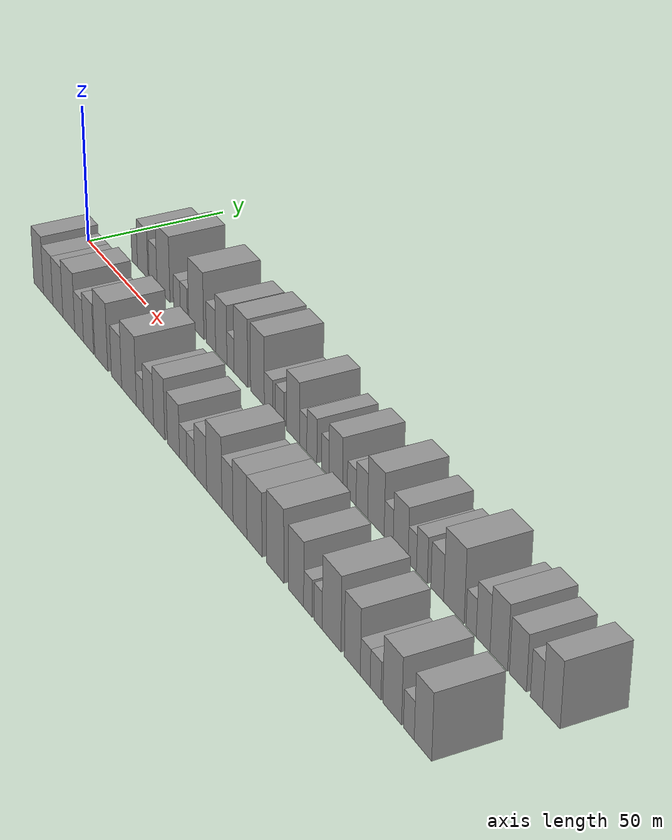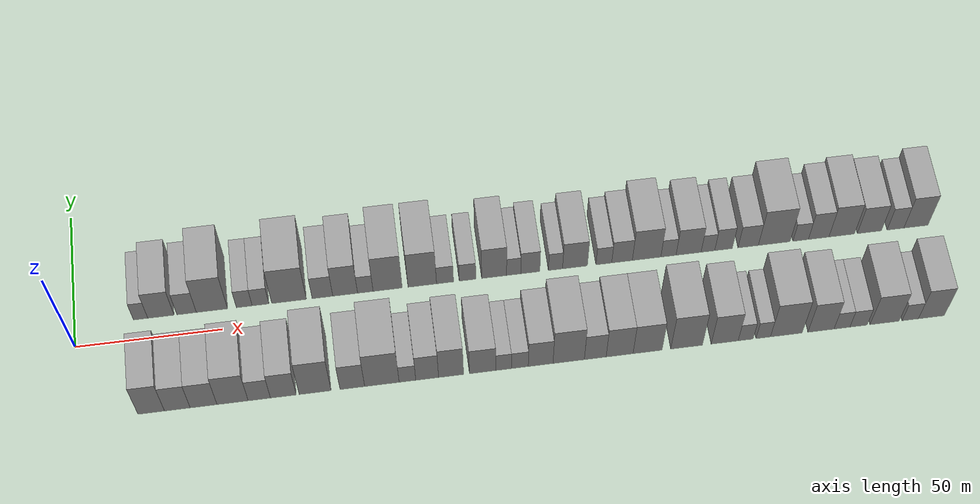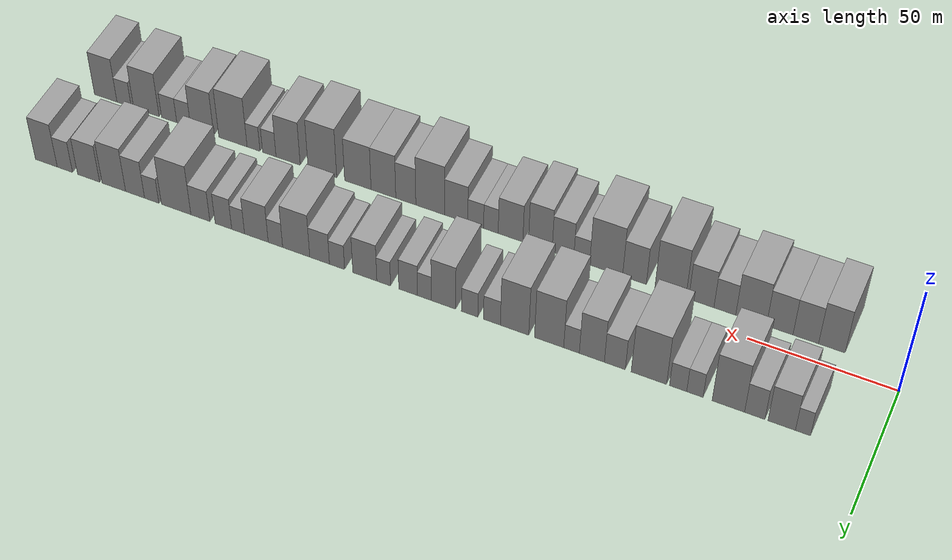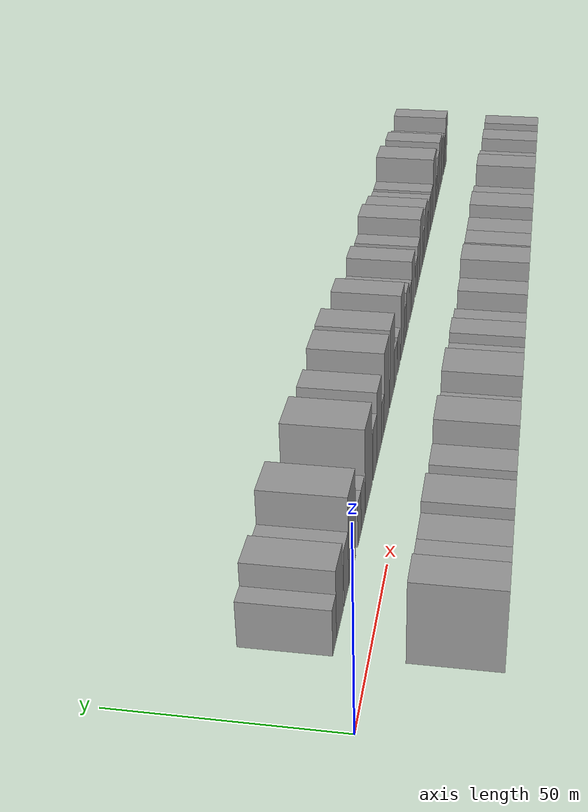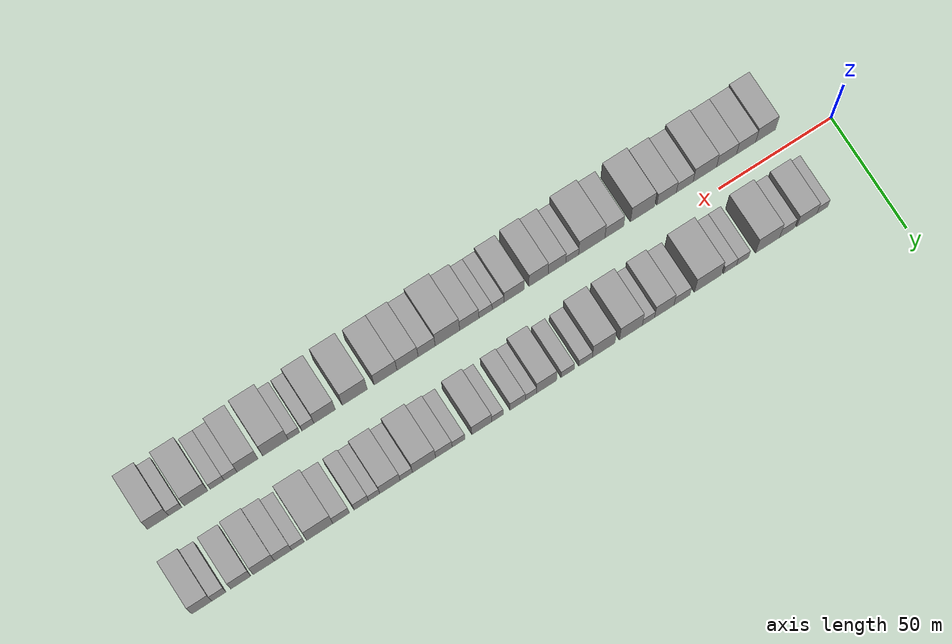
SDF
<sdf version="1.6">
 <world name="default">
  <scene>
   <sky><clouds><speed>12</speed></clouds></sky>
   <ambient>0.4 0.4 0.4 1</ambient>
   <background>0.7 0.7 0.7 1</background>
   <shadows>1</shadows>
  </scene>
  <gravity>0 0 -9.8066</gravity>
  <magnetic_field>6e-06 2.3e-05 -4.2e-05</magnetic_field>
  <physics default="0" name="default_physics" type="ode">
   <ode>
    <solver>
     <type>quick</type>
     <iters>10</iters>
     <sor>1.0</sor>
     <use_dynamic_moi_rescaling>0</use_dynamic_moi_rescaling>
    </solver>
    <constraints>
     <cfm>0</cfm>
     <erp>0.2</erp>
     <contact_max_correcting_vel>100</contact_max_correcting_vel>
     <contact_surface_layer>0.001</contact_surface_layer>
    </constraints>
   </ode>
   <max_step_size>0.004</max_step_size>
   <real_time_factor>1</real_time_factor>
   <real_time_update_rate>250</real_time_update_rate>
  </physics>
  <light name="sun" type="directional">
   <pose>0 0 10 0 0 0</pose>
   <diffuse>0.8 0.8 0.8 1</diffuse>
   <specular>0.2 0.2 0.2 1</specular>
   <attenuation>
    <range>1000</range>
    <constant>0.9</constant>
    <linear>0.01</linear>
    <quadratic>0.001</quadratic>
   </attenuation>
   <direction>-0.5 0.1 -0.9</direction>
  </light>
  <model name="building_1">
   <static>1</static>
   <pose>22.4371 17.5000 0 0.000000 0.000000 1.570796</pose>
   <link name="link">
    <pose>0 0 6.00 0 0 0</pose>
    <collision name="collision"><geometry><box><size>20.0000 4.8741 12.0000</size></box></geometry></collision>
    <visual name="visual">
     <cast_shadows>0</cast_shadows>
     <geometry><box><size>20.0000 4.8741 12.0000</size></box></geometry>
     <material>
      <script>
       <uri>model://grey_wall/materials/scripts</uri>
       <uri>model://grey_wall/materials/textures</uri>
       <name>vrc/grey_wall</name>
      </script>
     </material>
    </visual>
   </link>
  </model>
  <model name="building_2">
   <static>1</static>
   <pose>29.3461 17.5000 0 0.000000 0.000000 1.570796</pose>
   <link name="link">
    <pose>0 0 9.00 0 0 0</pose>
    <collision name="collision"><geometry><box><size>20.0000 8.9441 18.0000</size></box></geometry></collision>
    <visual name="visual">
     <cast_shadows>0</cast_shadows>
     <geometry><box><size>20.0000 8.9441 18.0000</size></box></geometry>
     <material>
      <script>
       <uri>model://grey_wall/materials/scripts</uri>
       <uri>model://grey_wall/materials/textures</uri>
       <name>vrc/grey_wall</name>
      </script>
     </material>
    </visual>
   </link>
  </model>
  <model name="building_3">
   <static>1</static>
   <pose>38.1417 17.5000 0 0.000000 0.000000 1.570796</pose>
   <link name="link">
    <pose>0 0 7.50 0 0 0</pose>
    <collision name="collision"><geometry><box><size>20.0000 6.6471 15.0000</size></box></geometry></collision>
    <visual name="visual">
     <cast_shadows>0</cast_shadows>
     <geometry><box><size>20.0000 6.6471 15.0000</size></box></geometry>
     <material>
      <script>
       <uri>model://grey_wall/materials/scripts</uri>
       <uri>model://grey_wall/materials/textures</uri>
       <name>vrc/grey_wall</name>
      </script>
     </material>
    </visual>
   </link>
  </model>
  <model name="building_4">
   <static>1</static>
   <pose>46.8133 17.5000 0 0.000000 0.000000 1.570796</pose>
   <link name="link">
    <pose>0 0 12.00 0 0 0</pose>
    <collision name="collision"><geometry><box><size>20.0000 10.6961 24.0000</size></box></geometry></collision>
    <visual name="visual">
     <cast_shadows>0</cast_shadows>
     <geometry><box><size>20.0000 10.6961 24.0000</size></box></geometry>
     <material>
      <script>
       <uri>model://grey_wall/materials/scripts</uri>
       <uri>model://grey_wall/materials/textures</uri>
       <name>vrc/grey_wall</name>
      </script>
     </material>
    </visual>
   </link>
  </model>
  <model name="building_5">
   <static>1</static>
   <pose>57.8785 17.5000 0 0.000000 0.000000 1.570796</pose>
   <link name="link">
    <pose>0 0 6.00 0 0 0</pose>
    <collision name="collision"><geometry><box><size>20.0000 5.4343 12.0000</size></box></geometry></collision>
    <visual name="visual">
     <cast_shadows>0</cast_shadows>
     <geometry><box><size>20.0000 5.4343 12.0000</size></box></geometry>
     <material>
      <script>
       <uri>model://grey_wall/materials/scripts</uri>
       <uri>model://grey_wall/materials/textures</uri>
       <name>vrc/grey_wall</name>
      </script>
     </material>
    </visual>
   </link>
  </model>
  <model name="building_6">
   <static>1</static>
   <pose>63.4660 17.5000 0 0.000000 0.000000 1.570796</pose>
   <link name="link">
    <pose>0 0 6.00 0 0 0</pose>
    <collision name="collision"><geometry><box><size>20.0000 5.7407 12.0000</size></box></geometry></collision>
    <visual name="visual">
     <cast_shadows>0</cast_shadows>
     <geometry><box><size>20.0000 5.7407 12.0000</size></box></geometry>
     <material>
      <script>
       <uri>model://grey_wall/materials/scripts</uri>
       <uri>model://grey_wall/materials/textures</uri>
       <name>vrc/grey_wall</name>
      </script>
     </material>
    </visual>
   </link>
  </model>
  <model name="building_7">
   <static>1</static>
   <pose>73.2834 17.5000 0 0.000000 0.000000 1.570796</pose>
   <link name="link">
    <pose>0 0 12.00 0 0 0</pose>
    <collision name="collision"><geometry><box><size>20.0000 11.8941 24.0000</size></box></geometry></collision>
    <visual name="visual">
     <cast_shadows>0</cast_shadows>
     <geometry><box><size>20.0000 11.8941 24.0000</size></box></geometry>
     <material>
      <script>
       <uri>model://grey_wall/materials/scripts</uri>
       <uri>model://grey_wall/materials/textures</uri>
       <name>vrc/grey_wall</name>
      </script>
     </material>
    </visual>
   </link>
  </model>
  <model name="building_8">
   <static>1</static>
   <pose>84.7820 17.5000 0 0.000000 0.000000 1.570796</pose>
   <link name="link">
    <pose>0 0 7.50 0 0 0</pose>
    <collision name="collision"><geometry><box><size>20.0000 7.1030 15.0000</size></box></geometry></collision>
    <visual name="visual">
     <cast_shadows>0</cast_shadows>
     <geometry><box><size>20.0000 7.1030 15.0000</size></box></geometry>
     <material>
      <script>
       <uri>model://grey_wall/materials/scripts</uri>
       <uri>model://grey_wall/materials/textures</uri>
       <name>vrc/grey_wall</name>
      </script>
     </material>
    </visual>
   </link>
  </model>
  <model name="building_9">
   <static>1</static>
   <pose>92.6144 17.5000 0 0.000000 0.000000 1.570796</pose>
   <link name="link">
    <pose>0 0 10.50 0 0 0</pose>
    <collision name="collision"><geometry><box><size>20.0000 8.5619 21.0000</size></box></geometry></collision>
    <visual name="visual">
     <cast_shadows>0</cast_shadows>
     <geometry><box><size>20.0000 8.5619 21.0000</size></box></geometry>
     <material>
      <script>
       <uri>model://grey_wall/materials/scripts</uri>
       <uri>model://grey_wall/materials/textures</uri>
       <name>vrc/grey_wall</name>
      </script>
     </material>
    </visual>
   </link>
  </model>
  <model name="building_10">
   <static>1</static>
   <pose>99.5759 17.5000 0 0.000000 0.000000 1.570796</pose>
   <link name="link">
    <pose>0 0 6.00 0 0 0</pose>
    <collision name="collision"><geometry><box><size>20.0000 5.3610 12.0000</size></box></geometry></collision>
    <visual name="visual">
     <cast_shadows>0</cast_shadows>
     <geometry><box><size>20.0000 5.3610 12.0000</size></box></geometry>
     <material>
      <script>
       <uri>model://grey_wall/materials/scripts</uri>
       <uri>model://grey_wall/materials/textures</uri>
       <name>vrc/grey_wall</name>
      </script>
     </material>
    </visual>
   </link>
  </model>
  <model name="building_11">
   <static>1</static>
   <pose>107.3028 17.5000 0 0.000000 0.000000 1.570796</pose>
   <link name="link">
    <pose>0 0 12.00 0 0 0</pose>
    <collision name="collision"><geometry><box><size>20.0000 10.0929 24.0000</size></box></geometry></collision>
    <visual name="visual">
     <cast_shadows>0</cast_shadows>
     <geometry><box><size>20.0000 10.0929 24.0000</size></box></geometry>
     <material>
      <script>
       <uri>model://grey_wall/materials/scripts</uri>
       <uri>model://grey_wall/materials/textures</uri>
       <name>vrc/grey_wall</name>
      </script>
     </material>
    </visual>
   </link>
  </model>
  <model name="building_12">
   <static>1</static>
   <pose>119.2989 17.5000 0 0.000000 0.000000 1.570796</pose>
   <link name="link">
    <pose>0 0 12.00 0 0 0</pose>
    <collision name="collision"><geometry><box><size>20.0000 9.8993 24.0000</size></box></geometry></collision>
    <visual name="visual">
     <cast_shadows>0</cast_shadows>
     <geometry><box><size>20.0000 9.8993 24.0000</size></box></geometry>
     <material>
      <script>
       <uri>model://grey_wall/materials/scripts</uri>
       <uri>model://grey_wall/materials/textures</uri>
       <name>vrc/grey_wall</name>
      </script>
     </material>
    </visual>
   </link>
  </model>
  <model name="building_13">
   <static>1</static>
   <pose>127.2059 17.5000 0 0.000000 0.000000 1.570796</pose>
   <link name="link">
    <pose>0 0 6.00 0 0 0</pose>
    <collision name="collision"><geometry><box><size>20.0000 5.9146 12.0000</size></box></geometry></collision>
    <visual name="visual">
     <cast_shadows>0</cast_shadows>
     <geometry><box><size>20.0000 5.9146 12.0000</size></box></geometry>
     <material>
      <script>
       <uri>model://grey_wall/materials/scripts</uri>
       <uri>model://grey_wall/materials/textures</uri>
       <name>vrc/grey_wall</name>
      </script>
     </material>
    </visual>
   </link>
  </model>
  <model name="building_14">
   <static>1</static>
   <pose>135.0609 17.5000 0 0.000000 0.000000 1.570796</pose>
   <link name="link">
    <pose>0 0 6.00 0 0 0</pose>
    <collision name="collision"><geometry><box><size>20.0000 5.7954 12.0000</size></box></geometry></collision>
    <visual name="visual">
     <cast_shadows>0</cast_shadows>
     <geometry><box><size>20.0000 5.7954 12.0000</size></box></geometry>
     <material>
      <script>
       <uri>model://grey_wall/materials/scripts</uri>
       <uri>model://grey_wall/materials/textures</uri>
       <name>vrc/grey_wall</name>
      </script>
     </material>
    </visual>
   </link>
  </model>
  <model name="building_15">
   <static>1</static>
   <pose>144.3010 17.5000 0 0.000000 0.000000 1.570796</pose>
   <link name="link">
    <pose>0 0 10.50 0 0 0</pose>
    <collision name="collision"><geometry><box><size>20.0000 8.6849 21.0000</size></box></geometry></collision>
    <visual name="visual">
     <cast_shadows>0</cast_shadows>
     <geometry><box><size>20.0000 8.6849 21.0000</size></box></geometry>
     <material>
      <script>
       <uri>model://grey_wall/materials/scripts</uri>
       <uri>model://grey_wall/materials/textures</uri>
       <name>vrc/grey_wall</name>
      </script>
     </material>
    </visual>
   </link>
  </model>
  <model name="building_16">
   <static>1</static>
   <pose>151.1096 17.5000 0 0.000000 0.000000 1.570796</pose>
   <link name="link">
    <pose>0 0 6.00 0 0 0</pose>
    <collision name="collision"><geometry><box><size>20.0000 4.9323 12.0000</size></box></geometry></collision>
    <visual name="visual">
     <cast_shadows>0</cast_shadows>
     <geometry><box><size>20.0000 4.9323 12.0000</size></box></geometry>
     <material>
      <script>
       <uri>model://grey_wall/materials/scripts</uri>
       <uri>model://grey_wall/materials/textures</uri>
       <name>vrc/grey_wall</name>
      </script>
     </material>
    </visual>
   </link>
  </model>
  <model name="building_17">
   <static>1</static>
   <pose>156.9179 17.5000 0 0.000000 0.000000 1.570796</pose>
   <link name="link">
    <pose>0 0 7.50 0 0 0</pose>
    <collision name="collision"><geometry><box><size>20.0000 6.6842 15.0000</size></box></geometry></collision>
    <visual name="visual">
     <cast_shadows>0</cast_shadows>
     <geometry><box><size>20.0000 6.6842 15.0000</size></box></geometry>
     <material>
      <script>
       <uri>model://grey_wall/materials/scripts</uri>
       <uri>model://grey_wall/materials/textures</uri>
       <name>vrc/grey_wall</name>
      </script>
     </material>
    </visual>
   </link>
  </model>
  <model name="building_18">
   <static>1</static>
   <pose>165.7371 17.5000 0 0.000000 0.000000 1.570796</pose>
   <link name="link">
    <pose>0 0 6.00 0 0 0</pose>
    <collision name="collision"><geometry><box><size>20.0000 4.9541 12.0000</size></box></geometry></collision>
    <visual name="visual">
     <cast_shadows>0</cast_shadows>
     <geometry><box><size>20.0000 4.9541 12.0000</size></box></geometry>
     <material>
      <script>
       <uri>model://grey_wall/materials/scripts</uri>
       <uri>model://grey_wall/materials/textures</uri>
       <name>vrc/grey_wall</name>
      </script>
     </material>
    </visual>
   </link>
  </model>
  <model name="building_19">
   <static>1</static>
   <pose>172.5716 17.5000 0 0.000000 0.000000 1.570796</pose>
   <link name="link">
    <pose>0 0 9.00 0 0 0</pose>
    <collision name="collision"><geometry><box><size>20.0000 8.7150 18.0000</size></box></geometry></collision>
    <visual name="visual">
     <cast_shadows>0</cast_shadows>
     <geometry><box><size>20.0000 8.7150 18.0000</size></box></geometry>
     <material>
      <script>
       <uri>model://grey_wall/materials/scripts</uri>
       <uri>model://grey_wall/materials/textures</uri>
       <name>vrc/grey_wall</name>
      </script>
     </material>
    </visual>
   </link>
  </model>
  <model name="building_20">
   <static>1</static>
   <pose>182.6954 17.5000 0 0.000000 0.000000 1.570796</pose>
   <link name="link">
    <pose>0 0 6.00 0 0 0</pose>
    <collision name="collision"><geometry><box><size>20.0000 5.5326 12.0000</size></box></geometry></collision>
    <visual name="visual">
     <cast_shadows>0</cast_shadows>
     <geometry><box><size>20.0000 5.5326 12.0000</size></box></geometry>
     <material>
      <script>
       <uri>model://grey_wall/materials/scripts</uri>
       <uri>model://grey_wall/materials/textures</uri>
       <name>vrc/grey_wall</name>
      </script>
     </material>
    </visual>
   </link>
  </model>
  <model name="building_21">
   <static>1</static>
   <pose>189.0813 17.5000 0 0.000000 0.000000 1.570796</pose>
   <link name="link">
    <pose>0 0 7.50 0 0 0</pose>
    <collision name="collision"><geometry><box><size>20.0000 7.2392 15.0000</size></box></geometry></collision>
    <visual name="visual">
     <cast_shadows>0</cast_shadows>
     <geometry><box><size>20.0000 7.2392 15.0000</size></box></geometry>
     <material>
      <script>
       <uri>model://grey_wall/materials/scripts</uri>
       <uri>model://grey_wall/materials/textures</uri>
       <name>vrc/grey_wall</name>
      </script>
     </material>
    </visual>
   </link>
  </model>
  <model name="building_22">
   <static>1</static>
   <pose>197.7190 17.5000 0 0.000000 0.000000 1.570796</pose>
   <link name="link">
    <pose>0 0 10.50 0 0 0</pose>
    <collision name="collision"><geometry><box><size>20.0000 10.0362 21.0000</size></box></geometry></collision>
    <visual name="visual">
     <cast_shadows>0</cast_shadows>
     <geometry><box><size>20.0000 10.0362 21.0000</size></box></geometry>
     <material>
      <script>
       <uri>model://grey_wall/materials/scripts</uri>
       <uri>model://grey_wall/materials/textures</uri>
       <name>vrc/grey_wall</name>
      </script>
     </material>
    </visual>
   </link>
  </model>
  <model name="building_23">
   <static>1</static>
   <pose>205.4231 17.5000 0 0.000000 0.000000 1.570796</pose>
   <link name="link">
    <pose>0 0 6.00 0 0 0</pose>
    <collision name="collision"><geometry><box><size>20.0000 5.3720 12.0000</size></box></geometry></collision>
    <visual name="visual">
     <cast_shadows>0</cast_shadows>
     <geometry><box><size>20.0000 5.3720 12.0000</size></box></geometry>
     <material>
      <script>
       <uri>model://grey_wall/materials/scripts</uri>
       <uri>model://grey_wall/materials/textures</uri>
       <name>vrc/grey_wall</name>
      </script>
     </material>
    </visual>
   </link>
  </model>
  <model name="building_24">
   <static>1</static>
   <pose>212.5330 17.5000 0 0.000000 0.000000 1.570796</pose>
   <link name="link">
    <pose>0 0 9.00 0 0 0</pose>
    <collision name="collision"><geometry><box><size>20.0000 8.8478 18.0000</size></box></geometry></collision>
    <visual name="visual">
     <cast_shadows>0</cast_shadows>
     <geometry><box><size>20.0000 8.8478 18.0000</size></box></geometry>
     <material>
      <script>
       <uri>model://grey_wall/materials/scripts</uri>
       <uri>model://grey_wall/materials/textures</uri>
       <name>vrc/grey_wall</name>
      </script>
     </material>
    </visual>
   </link>
  </model>
  <model name="building_25">
   <static>1</static>
   <pose>219.3703 17.5000 0 0.000000 0.000000 1.570796</pose>
   <link name="link">
    <pose>0 0 6.00 0 0 0</pose>
    <collision name="collision"><geometry><box><size>20.0000 4.8268 12.0000</size></box></geometry></collision>
    <visual name="visual">
     <cast_shadows>0</cast_shadows>
     <geometry><box><size>20.0000 4.8268 12.0000</size></box></geometry>
     <material>
      <script>
       <uri>model://grey_wall/materials/scripts</uri>
       <uri>model://grey_wall/materials/textures</uri>
       <name>vrc/grey_wall</name>
      </script>
     </material>
    </visual>
   </link>
  </model>
  <model name="building_26">
   <static>1</static>
   <pose>224.9114 17.5000 0 0.000000 0.000000 1.570796</pose>
   <link name="link">
    <pose>0 0 7.50 0 0 0</pose>
    <collision name="collision"><geometry><box><size>20.0000 6.2554 15.0000</size></box></geometry></collision>
    <visual name="visual">
     <cast_shadows>0</cast_shadows>
     <geometry><box><size>20.0000 6.2554 15.0000</size></box></geometry>
     <material>
      <script>
       <uri>model://grey_wall/materials/scripts</uri>
       <uri>model://grey_wall/materials/textures</uri>
       <name>vrc/grey_wall</name>
      </script>
     </material>
    </visual>
   </link>
  </model>
  <model name="building_27">
   <static>1</static>
   <pose>233.6453 17.5000 0 0.000000 0.000000 1.570796</pose>
   <link name="link">
    <pose>0 0 7.50 0 0 0</pose>
    <collision name="collision"><geometry><box><size>20.0000 7.2123 15.0000</size></box></geometry></collision>
    <visual name="visual">
     <cast_shadows>0</cast_shadows>
     <geometry><box><size>20.0000 7.2123 15.0000</size></box></geometry>
     <material>
      <script>
       <uri>model://grey_wall/materials/scripts</uri>
       <uri>model://grey_wall/materials/textures</uri>
       <name>vrc/grey_wall</name>
      </script>
     </material>
    </visual>
   </link>
  </model>
  <model name="building_28">
   <static>1</static>
   <pose>242.8889 17.5000 0 0.000000 0.000000 1.570796</pose>
   <link name="link">
    <pose>0 0 12.00 0 0 0</pose>
    <collision name="collision"><geometry><box><size>20.0000 11.2750 24.0000</size></box></geometry></collision>
    <visual name="visual">
     <cast_shadows>0</cast_shadows>
     <geometry><box><size>20.0000 11.2750 24.0000</size></box></geometry>
     <material>
      <script>
       <uri>model://grey_wall/materials/scripts</uri>
       <uri>model://grey_wall/materials/textures</uri>
       <name>vrc/grey_wall</name>
      </script>
     </material>
    </visual>
   </link>
  </model>
  <model name="building_29">
   <static>1</static>
   <pose>252.2764 17.5000 0 0.000000 0.000000 1.570796</pose>
   <link name="link">
    <pose>0 0 6.00 0 0 0</pose>
    <collision name="collision"><geometry><box><size>20.0000 5.4998 12.0000</size></box></geometry></collision>
    <visual name="visual">
     <cast_shadows>0</cast_shadows>
     <geometry><box><size>20.0000 5.4998 12.0000</size></box></geometry>
     <material>
      <script>
       <uri>model://grey_wall/materials/scripts</uri>
       <uri>model://grey_wall/materials/textures</uri>
       <name>vrc/grey_wall</name>
      </script>
     </material>
    </visual>
   </link>
  </model>
  <model name="building_30">
   <static>1</static>
   <pose>258.6994 17.5000 0 0.000000 0.000000 1.570796</pose>
   <link name="link">
    <pose>0 0 9.00 0 0 0</pose>
    <collision name="collision"><geometry><box><size>20.0000 7.3462 18.0000</size></box></geometry></collision>
    <visual name="visual">
     <cast_shadows>0</cast_shadows>
     <geometry><box><size>20.0000 7.3462 18.0000</size></box></geometry>
     <material>
      <script>
       <uri>model://grey_wall/materials/scripts</uri>
       <uri>model://grey_wall/materials/textures</uri>
       <name>vrc/grey_wall</name>
      </script>
     </material>
    </visual>
   </link>
  </model>
  <model name="building_31">
   <static>1</static>
   <pose>266.9366 17.5000 0 0.000000 0.000000 1.570796</pose>
   <link name="link">
    <pose>0 0 10.50 0 0 0</pose>
    <collision name="collision"><geometry><box><size>20.0000 9.1282 21.0000</size></box></geometry></collision>
    <visual name="visual">
     <cast_shadows>0</cast_shadows>
     <geometry><box><size>20.0000 9.1282 21.0000</size></box></geometry>
     <material>
      <script>
       <uri>model://grey_wall/materials/scripts</uri>
       <uri>model://grey_wall/materials/textures</uri>
       <name>vrc/grey_wall</name>
      </script>
     </material>
    </visual>
   </link>
  </model>
  <model name="building_32">
   <static>1</static>
   <pose>276.8207 17.5000 0 0.000000 0.000000 1.570796</pose>
   <link name="link">
    <pose>0 0 9.00 0 0 0</pose>
    <collision name="collision"><geometry><box><size>20.0000 8.6400 18.0000</size></box></geometry></collision>
    <visual name="visual">
     <cast_shadows>0</cast_shadows>
     <geometry><box><size>20.0000 8.6400 18.0000</size></box></geometry>
     <material>
      <script>
       <uri>model://grey_wall/materials/scripts</uri>
       <uri>model://grey_wall/materials/textures</uri>
       <name>vrc/grey_wall</name>
      </script>
     </material>
    </visual>
   </link>
  </model>
  <model name="building_33">
   <static>1</static>
   <pose>286.1536 17.5000 0 0.000000 0.000000 1.570796</pose>
   <link name="link">
    <pose>0 0 7.50 0 0 0</pose>
    <collision name="collision"><geometry><box><size>20.0000 6.0259 15.0000</size></box></geometry></collision>
    <visual name="visual">
     <cast_shadows>0</cast_shadows>
     <geometry><box><size>20.0000 6.0259 15.0000</size></box></geometry>
     <material>
      <script>
       <uri>model://grey_wall/materials/scripts</uri>
       <uri>model://grey_wall/materials/textures</uri>
       <name>vrc/grey_wall</name>
      </script>
     </material>
    </visual>
   </link>
  </model>
  <model name="building_34">
   <static>1</static>
   <pose>293.4868 17.5000 0 0.000000 0.000000 1.570796</pose>
   <link name="link">
    <pose>0 0 10.50 0 0 0</pose>
    <collision name="collision"><geometry><box><size>20.0000 8.6404 21.0000</size></box></geometry></collision>
    <visual name="visual">
     <cast_shadows>0</cast_shadows>
     <geometry><box><size>20.0000 8.6404 21.0000</size></box></geometry>
     <material>
      <script>
       <uri>model://grey_wall/materials/scripts</uri>
       <uri>model://grey_wall/materials/textures</uri>
       <name>vrc/grey_wall</name>
      </script>
     </material>
    </visual>
   </link>
  </model>
  <model name="building_35">
   <static>1</static>
   <pose>24.4137 -17.5000 0 0.000000 0.000000 1.570796</pose>
   <link name="link">
    <pose>0 0 10.50 0 0 0</pose>
    <collision name="collision"><geometry><box><size>20.0000 8.8275 21.0000</size></box></geometry></collision>
    <visual name="visual">
     <cast_shadows>0</cast_shadows>
     <geometry><box><size>20.0000 8.8275 21.0000</size></box></geometry>
     <material>
      <script>
       <uri>model://grey_wall/materials/scripts</uri>
       <uri>model://grey_wall/materials/textures</uri>
       <name>vrc/grey_wall</name>
      </script>
     </material>
    </visual>
   </link>
  </model>
  <model name="building_36">
   <static>1</static>
   <pose>33.1132 -17.5000 0 0.000000 0.000000 1.570796</pose>
   <link name="link">
    <pose>0 0 9.00 0 0 0</pose>
    <collision name="collision"><geometry><box><size>20.0000 8.5713 18.0000</size></box></geometry></collision>
    <visual name="visual">
     <cast_shadows>0</cast_shadows>
     <geometry><box><size>20.0000 8.5713 18.0000</size></box></geometry>
     <material>
      <script>
       <uri>model://grey_wall/materials/scripts</uri>
       <uri>model://grey_wall/materials/textures</uri>
       <name>vrc/grey_wall</name>
      </script>
     </material>
    </visual>
   </link>
  </model>
  <model name="building_37">
   <static>1</static>
   <pose>41.8650 -17.5000 0 0.000000 0.000000 1.570796</pose>
   <link name="link">
    <pose>0 0 9.00 0 0 0</pose>
    <collision name="collision"><geometry><box><size>20.0000 8.9324 18.0000</size></box></geometry></collision>
    <visual name="visual">
     <cast_shadows>0</cast_shadows>
     <geometry><box><size>20.0000 8.9324 18.0000</size></box></geometry>
     <material>
      <script>
       <uri>model://grey_wall/materials/scripts</uri>
       <uri>model://grey_wall/materials/textures</uri>
       <name>vrc/grey_wall</name>
      </script>
     </material>
    </visual>
   </link>
  </model>
  <model name="building_38">
   <static>1</static>
   <pose>51.5409 -17.5000 0 0.000000 0.000000 1.570796</pose>
   <link name="link">
    <pose>0 0 10.50 0 0 0</pose>
    <collision name="collision"><geometry><box><size>20.0000 10.4194 21.0000</size></box></geometry></collision>
    <visual name="visual">
     <cast_shadows>0</cast_shadows>
     <geometry><box><size>20.0000 10.4194 21.0000</size></box></geometry>
     <material>
      <script>
       <uri>model://grey_wall/materials/scripts</uri>
       <uri>model://grey_wall/materials/textures</uri>
       <name>vrc/grey_wall</name>
      </script>
     </material>
    </visual>
   </link>
  </model>
  <model name="building_39">
   <static>1</static>
   <pose>60.4758 -17.5000 0 0.000000 0.000000 1.570796</pose>
   <link name="link">
    <pose>0 0 7.50 0 0 0</pose>
    <collision name="collision"><geometry><box><size>20.0000 7.4503 15.0000</size></box></geometry></collision>
    <visual name="visual">
     <cast_shadows>0</cast_shadows>
     <geometry><box><size>20.0000 7.4503 15.0000</size></box></geometry>
     <material>
      <script>
       <uri>model://grey_wall/materials/scripts</uri>
       <uri>model://grey_wall/materials/textures</uri>
       <name>vrc/grey_wall</name>
      </script>
     </material>
    </visual>
   </link>
  </model>
  <model name="building_40">
   <static>1</static>
   <pose>68.5276 -17.5000 0 0.000000 0.000000 1.570796</pose>
   <link name="link">
    <pose>0 0 9.00 0 0 0</pose>
    <collision name="collision"><geometry><box><size>20.0000 8.6534 18.0000</size></box></geometry></collision>
    <visual name="visual">
     <cast_shadows>0</cast_shadows>
     <geometry><box><size>20.0000 8.6534 18.0000</size></box></geometry>
     <material>
      <script>
       <uri>model://grey_wall/materials/scripts</uri>
       <uri>model://grey_wall/materials/textures</uri>
       <name>vrc/grey_wall</name>
      </script>
     </material>
    </visual>
   </link>
  </model>
  <model name="building_41">
   <static>1</static>
   <pose>79.2030 -17.5000 0 0.000000 0.000000 1.570796</pose>
   <link name="link">
    <pose>0 0 12.00 0 0 0</pose>
    <collision name="collision"><geometry><box><size>20.0000 10.6974 24.0000</size></box></geometry></collision>
    <visual name="visual">
     <cast_shadows>0</cast_shadows>
     <geometry><box><size>20.0000 10.6974 24.0000</size></box></geometry>
     <material>
      <script>
       <uri>model://grey_wall/materials/scripts</uri>
       <uri>model://grey_wall/materials/textures</uri>
       <name>vrc/grey_wall</name>
      </script>
     </material>
    </visual>
   </link>
  </model>
  <model name="building_42">
   <static>1</static>
   <pose>91.7062 -17.5000 0 0.000000 0.000000 1.570796</pose>
   <link name="link">
    <pose>0 0 9.00 0 0 0</pose>
    <collision name="collision"><geometry><box><size>20.0000 8.3090 18.0000</size></box></geometry></collision>
    <visual name="visual">
     <cast_shadows>0</cast_shadows>
     <geometry><box><size>20.0000 8.3090 18.0000</size></box></geometry>
     <material>
      <script>
       <uri>model://grey_wall/materials/scripts</uri>
       <uri>model://grey_wall/materials/textures</uri>
       <name>vrc/grey_wall</name>
      </script>
     </material>
    </visual>
   </link>
  </model>
  <model name="building_43">
   <static>1</static>
   <pose>101.6752 -17.5000 0 0.000000 0.000000 1.570796</pose>
   <link name="link">
    <pose>0 0 12.00 0 0 0</pose>
    <collision name="collision"><geometry><box><size>20.0000 11.6290 24.0000</size></box></geometry></collision>
    <visual name="visual">
     <cast_shadows>0</cast_shadows>
     <geometry><box><size>20.0000 11.6290 24.0000</size></box></geometry>
     <material>
      <script>
       <uri>model://grey_wall/materials/scripts</uri>
       <uri>model://grey_wall/materials/textures</uri>
       <name>vrc/grey_wall</name>
      </script>
     </material>
    </visual>
   </link>
  </model>
  <model name="building_44">
   <static>1</static>
   <pose>110.3023 -17.5000 0 0.000000 0.000000 1.570796</pose>
   <link name="link">
    <pose>0 0 6.00 0 0 0</pose>
    <collision name="collision"><geometry><box><size>20.0000 5.6254 12.0000</size></box></geometry></collision>
    <visual name="visual">
     <cast_shadows>0</cast_shadows>
     <geometry><box><size>20.0000 5.6254 12.0000</size></box></geometry>
     <material>
      <script>
       <uri>model://grey_wall/materials/scripts</uri>
       <uri>model://grey_wall/materials/textures</uri>
       <name>vrc/grey_wall</name>
      </script>
     </material>
    </visual>
   </link>
  </model>
  <model name="building_45">
   <static>1</static>
   <pose>116.9781 -17.5000 0 0.000000 0.000000 1.570796</pose>
   <link name="link">
    <pose>0 0 9.00 0 0 0</pose>
    <collision name="collision"><geometry><box><size>20.0000 7.7262 18.0000</size></box></geometry></collision>
    <visual name="visual">
     <cast_shadows>0</cast_shadows>
     <geometry><box><size>20.0000 7.7262 18.0000</size></box></geometry>
     <material>
      <script>
       <uri>model://grey_wall/materials/scripts</uri>
       <uri>model://grey_wall/materials/textures</uri>
       <name>vrc/grey_wall</name>
      </script>
     </material>
    </visual>
   </link>
  </model>
  <model name="building_46">
   <static>1</static>
   <pose>125.0782 -17.5000 0 0.000000 0.000000 1.570796</pose>
   <link name="link">
    <pose>0 0 10.50 0 0 0</pose>
    <collision name="collision"><geometry><box><size>20.0000 8.4740 21.0000</size></box></geometry></collision>
    <visual name="visual">
     <cast_shadows>0</cast_shadows>
     <geometry><box><size>20.0000 8.4740 21.0000</size></box></geometry>
     <material>
      <script>
       <uri>model://grey_wall/materials/scripts</uri>
       <uri>model://grey_wall/materials/textures</uri>
       <name>vrc/grey_wall</name>
      </script>
     </material>
    </visual>
   </link>
  </model>
  <model name="building_47">
   <static>1</static>
   <pose>135.7772 -17.5000 0 0.000000 0.000000 1.570796</pose>
   <link name="link">
    <pose>0 0 9.00 0 0 0</pose>
    <collision name="collision"><geometry><box><size>20.0000 8.9241 18.0000</size></box></geometry></collision>
    <visual name="visual">
     <cast_shadows>0</cast_shadows>
     <geometry><box><size>20.0000 8.9241 18.0000</size></box></geometry>
     <material>
      <script>
       <uri>model://grey_wall/materials/scripts</uri>
       <uri>model://grey_wall/materials/textures</uri>
       <name>vrc/grey_wall</name>
      </script>
     </material>
    </visual>
   </link>
  </model>
  <model name="building_48">
   <static>1</static>
   <pose>142.8903 -17.5000 0 0.000000 0.000000 1.570796</pose>
   <link name="link">
    <pose>0 0 6.00 0 0 0</pose>
    <collision name="collision"><geometry><box><size>20.0000 5.3023 12.0000</size></box></geometry></collision>
    <visual name="visual">
     <cast_shadows>0</cast_shadows>
     <geometry><box><size>20.0000 5.3023 12.0000</size></box></geometry>
     <material>
      <script>
       <uri>model://grey_wall/materials/scripts</uri>
       <uri>model://grey_wall/materials/textures</uri>
       <name>vrc/grey_wall</name>
      </script>
     </material>
    </visual>
   </link>
  </model>
  <model name="building_49">
   <static>1</static>
   <pose>148.4202 -17.5000 0 0.000000 0.000000 1.570796</pose>
   <link name="link">
    <pose>0 0 6.00 0 0 0</pose>
    <collision name="collision"><geometry><box><size>20.0000 5.7574 12.0000</size></box></geometry></collision>
    <visual name="visual">
     <cast_shadows>0</cast_shadows>
     <geometry><box><size>20.0000 5.7574 12.0000</size></box></geometry>
     <material>
      <script>
       <uri>model://grey_wall/materials/scripts</uri>
       <uri>model://grey_wall/materials/textures</uri>
       <name>vrc/grey_wall</name>
      </script>
     </material>
    </visual>
   </link>
  </model>
  <model name="building_50">
   <static>1</static>
   <pose>155.5184 -17.5000 0 0.000000 0.000000 1.570796</pose>
   <link name="link">
    <pose>0 0 9.00 0 0 0</pose>
    <collision name="collision"><geometry><box><size>20.0000 8.4391 18.0000</size></box></geometry></collision>
    <visual name="visual">
     <cast_shadows>0</cast_shadows>
     <geometry><box><size>20.0000 8.4391 18.0000</size></box></geometry>
     <material>
      <script>
       <uri>model://grey_wall/materials/scripts</uri>
       <uri>model://grey_wall/materials/textures</uri>
       <name>vrc/grey_wall</name>
      </script>
     </material>
    </visual>
   </link>
  </model>
  <model name="building_51">
   <static>1</static>
   <pose>165.0875 -17.5000 0 0.000000 0.000000 1.570796</pose>
   <link name="link">
    <pose>0 0 12.00 0 0 0</pose>
    <collision name="collision"><geometry><box><size>20.0000 10.6992 24.0000</size></box></geometry></collision>
    <visual name="visual">
     <cast_shadows>0</cast_shadows>
     <geometry><box><size>20.0000 10.6992 24.0000</size></box></geometry>
     <material>
      <script>
       <uri>model://grey_wall/materials/scripts</uri>
       <uri>model://grey_wall/materials/textures</uri>
       <name>vrc/grey_wall</name>
      </script>
     </material>
    </visual>
   </link>
  </model>
  <model name="building_52">
   <static>1</static>
   <pose>174.1637 -17.5000 0 0.000000 0.000000 1.570796</pose>
   <link name="link">
    <pose>0 0 9.00 0 0 0</pose>
    <collision name="collision"><geometry><box><size>20.0000 7.4531 18.0000</size></box></geometry></collision>
    <visual name="visual">
     <cast_shadows>0</cast_shadows>
     <geometry><box><size>20.0000 7.4531 18.0000</size></box></geometry>
     <material>
      <script>
       <uri>model://grey_wall/materials/scripts</uri>
       <uri>model://grey_wall/materials/textures</uri>
       <name>vrc/grey_wall</name>
      </script>
     </material>
    </visual>
   </link>
  </model>
  <model name="building_53">
   <static>1</static>
   <pose>182.5076 -17.5000 0 0.000000 0.000000 1.570796</pose>
   <link name="link">
    <pose>0 0 10.50 0 0 0</pose>
    <collision name="collision"><geometry><box><size>20.0000 9.2346 21.0000</size></box></geometry></collision>
    <visual name="visual">
     <cast_shadows>0</cast_shadows>
     <geometry><box><size>20.0000 9.2346 21.0000</size></box></geometry>
     <material>
      <script>
       <uri>model://grey_wall/materials/scripts</uri>
       <uri>model://grey_wall/materials/textures</uri>
       <name>vrc/grey_wall</name>
      </script>
     </material>
    </visual>
   </link>
  </model>
  <model name="building_54">
   <static>1</static>
   <pose>192.1014 -17.5000 0 0.000000 0.000000 1.570796</pose>
   <link name="link">
    <pose>0 0 10.50 0 0 0</pose>
    <collision name="collision"><geometry><box><size>20.0000 9.9530 21.0000</size></box></geometry></collision>
    <visual name="visual">
     <cast_shadows>0</cast_shadows>
     <geometry><box><size>20.0000 9.9530 21.0000</size></box></geometry>
     <material>
      <script>
       <uri>model://grey_wall/materials/scripts</uri>
       <uri>model://grey_wall/materials/textures</uri>
       <name>vrc/grey_wall</name>
      </script>
     </material>
    </visual>
   </link>
  </model>
  <model name="building_55">
   <static>1</static>
   <pose>205.5289 -17.5000 0 0.000000 0.000000 1.570796</pose>
   <link name="link">
    <pose>0 0 12.00 0 0 0</pose>
    <collision name="collision"><geometry><box><size>20.0000 10.9021 24.0000</size></box></geometry></collision>
    <visual name="visual">
     <cast_shadows>0</cast_shadows>
     <geometry><box><size>20.0000 10.9021 24.0000</size></box></geometry>
     <material>
      <script>
       <uri>model://grey_wall/materials/scripts</uri>
       <uri>model://grey_wall/materials/textures</uri>
       <name>vrc/grey_wall</name>
      </script>
     </material>
    </visual>
   </link>
  </model>
  <model name="building_56">
   <static>1</static>
   <pose>218.6363 -17.5000 0 0.000000 0.000000 1.570796</pose>
   <link name="link">
    <pose>0 0 10.50 0 0 0</pose>
    <collision name="collision"><geometry><box><size>20.0000 9.3126 21.0000</size></box></geometry></collision>
    <visual name="visual">
     <cast_shadows>0</cast_shadows>
     <geometry><box><size>20.0000 9.3126 21.0000</size></box></geometry>
     <material>
      <script>
       <uri>model://grey_wall/materials/scripts</uri>
       <uri>model://grey_wall/materials/textures</uri>
       <name>vrc/grey_wall</name>
      </script>
     </material>
    </visual>
   </link>
  </model>
  <model name="building_57">
   <static>1</static>
   <pose>225.8810 -17.5000 0 0.000000 0.000000 1.570796</pose>
   <link name="link">
    <pose>0 0 6.00 0 0 0</pose>
    <collision name="collision"><geometry><box><size>20.0000 5.1769 12.0000</size></box></geometry></collision>
    <visual name="visual">
     <cast_shadows>0</cast_shadows>
     <geometry><box><size>20.0000 5.1769 12.0000</size></box></geometry>
     <material>
      <script>
       <uri>model://grey_wall/materials/scripts</uri>
       <uri>model://grey_wall/materials/textures</uri>
       <name>vrc/grey_wall</name>
      </script>
     </material>
    </visual>
   </link>
  </model>
  <model name="building_58">
   <static>1</static>
   <pose>231.9726 -17.5000 0 0.000000 0.000000 1.570796</pose>
   <link name="link">
    <pose>0 0 6.00 0 0 0</pose>
    <collision name="collision"><geometry><box><size>20.0000 5.0064 12.0000</size></box></geometry></collision>
    <visual name="visual">
     <cast_shadows>0</cast_shadows>
     <geometry><box><size>20.0000 5.0064 12.0000</size></box></geometry>
     <material>
      <script>
       <uri>model://grey_wall/materials/scripts</uri>
       <uri>model://grey_wall/materials/textures</uri>
       <name>vrc/grey_wall</name>
      </script>
     </material>
    </visual>
   </link>
  </model>
  <model name="building_59">
   <static>1</static>
   <pose>239.9787 -17.5000 0 0.000000 0.000000 1.570796</pose>
   <link name="link">
    <pose>0 0 12.00 0 0 0</pose>
    <collision name="collision"><geometry><box><size>20.0000 11.0057 24.0000</size></box></geometry></collision>
    <visual name="visual">
     <cast_shadows>0</cast_shadows>
     <geometry><box><size>20.0000 11.0057 24.0000</size></box></geometry>
     <material>
      <script>
       <uri>model://grey_wall/materials/scripts</uri>
       <uri>model://grey_wall/materials/textures</uri>
       <name>vrc/grey_wall</name>
      </script>
     </material>
    </visual>
   </link>
  </model>
  <model name="building_60">
   <static>1</static>
   <pose>252.0187 -17.5000 0 0.000000 0.000000 1.570796</pose>
   <link name="link">
    <pose>0 0 10.50 0 0 0</pose>
    <collision name="collision"><geometry><box><size>20.0000 9.0743 21.0000</size></box></geometry></collision>
    <visual name="visual">
     <cast_shadows>0</cast_shadows>
     <geometry><box><size>20.0000 9.0743 21.0000</size></box></geometry>
     <material>
      <script>
       <uri>model://grey_wall/materials/scripts</uri>
       <uri>model://grey_wall/materials/textures</uri>
       <name>vrc/grey_wall</name>
      </script>
     </material>
    </visual>
   </link>
  </model>
  <model name="building_61">
   <static>1</static>
   <pose>259.3193 -17.5000 0 0.000000 0.000000 1.570796</pose>
   <link name="link">
    <pose>0 0 6.00 0 0 0</pose>
    <collision name="collision"><geometry><box><size>20.0000 5.5267 12.0000</size></box></geometry></collision>
    <visual name="visual">
     <cast_shadows>0</cast_shadows>
     <geometry><box><size>20.0000 5.5267 12.0000</size></box></geometry>
     <material>
      <script>
       <uri>model://grey_wall/materials/scripts</uri>
       <uri>model://grey_wall/materials/textures</uri>
       <name>vrc/grey_wall</name>
      </script>
     </material>
    </visual>
   </link>
  </model>
  <model name="building_62">
   <static>1</static>
   <pose>265.0823 -17.5000 0 0.000000 0.000000 1.570796</pose>
   <link name="link">
    <pose>0 0 6.00 0 0 0</pose>
    <collision name="collision"><geometry><box><size>20.0000 5.9994 12.0000</size></box></geometry></collision>
    <visual name="visual">
     <cast_shadows>0</cast_shadows>
     <geometry><box><size>20.0000 5.9994 12.0000</size></box></geometry>
     <material>
      <script>
       <uri>model://grey_wall/materials/scripts</uri>
       <uri>model://grey_wall/materials/textures</uri>
       <name>vrc/grey_wall</name>
      </script>
     </material>
    </visual>
   </link>
  </model>
  <model name="building_63">
   <static>1</static>
   <pose>274.1723 -17.5000 0 0.000000 0.000000 1.570796</pose>
   <link name="link">
    <pose>0 0 10.50 0 0 0</pose>
    <collision name="collision"><geometry><box><size>20.0000 10.1805 21.0000</size></box></geometry></collision>
    <visual name="visual">
     <cast_shadows>0</cast_shadows>
     <geometry><box><size>20.0000 10.1805 21.0000</size></box></geometry>
     <material>
      <script>
       <uri>model://grey_wall/materials/scripts</uri>
       <uri>model://grey_wall/materials/textures</uri>
       <name>vrc/grey_wall</name>
      </script>
     </material>
    </visual>
   </link>
  </model>
  <model name="building_64">
   <static>1</static>
   <pose>283.1160 -17.5000 0 0.000000 0.000000 1.570796</pose>
   <link name="link">
    <pose>0 0 6.00 0 0 0</pose>
    <collision name="collision"><geometry><box><size>20.0000 5.7070 12.0000</size></box></geometry></collision>
    <visual name="visual">
     <cast_shadows>0</cast_shadows>
     <geometry><box><size>20.0000 5.7070 12.0000</size></box></geometry>
     <material>
      <script>
       <uri>model://grey_wall/materials/scripts</uri>
       <uri>model://grey_wall/materials/textures</uri>
       <name>vrc/grey_wall</name>
      </script>
     </material>
    </visual>
   </link>
  </model>
  <model name="building_65">
   <static>1</static>
   <pose>290.5051 -17.5000 0 0.000000 0.000000 1.570796</pose>
   <link name="link">
    <pose>0 0 10.50 0 0 0</pose>
    <collision name="collision"><geometry><box><size>20.0000 9.0712 21.0000</size></box></geometry></collision>
    <visual name="visual">
     <cast_shadows>0</cast_shadows>
     <geometry><box><size>20.0000 9.0712 21.0000</size></box></geometry>
     <material>
      <script>
       <uri>model://grey_wall/materials/scripts</uri>
       <uri>model://grey_wall/materials/textures</uri>
       <name>vrc/grey_wall</name>
      </script>
     </material>
    </visual>
   </link>
  </model>
 </world>
</sdf>
